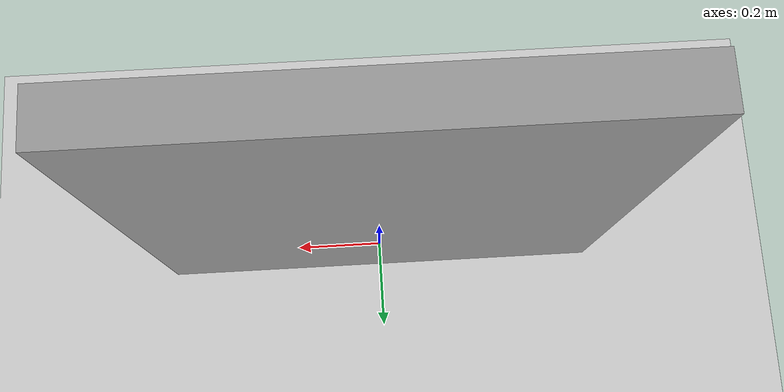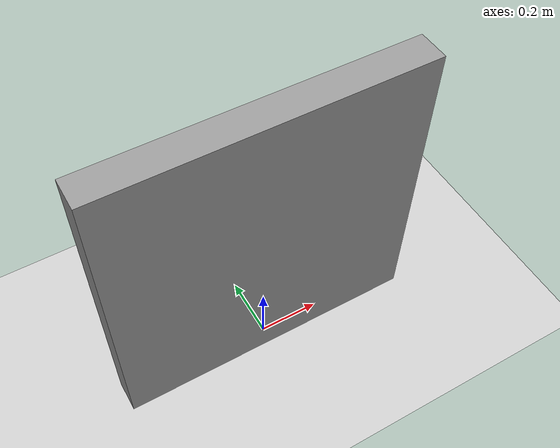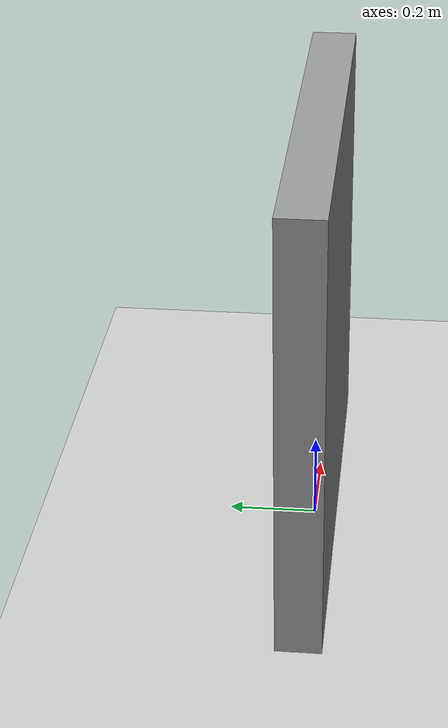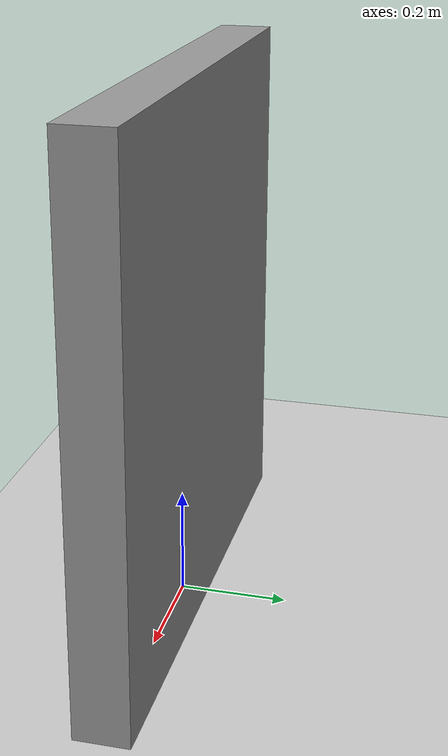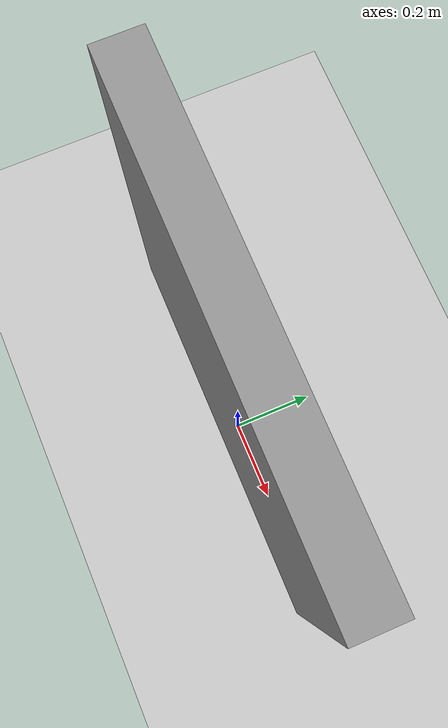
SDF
<?xml version="1.0" ?>
<sdf version="1.6">
    <world name="default">
        <gravity>0 0 -9.81</gravity>

        <include>
            <uri>model://Ground_plane</uri>
        </include>
        <include>
            <uri>model://sun</uri>
        </include>
        <model name='unit_box'>
            <pose frame=''>0 0 0.5 0 -0 0</pose>
            <link name='link'>
                <inertial>
                    <mass>1</mass>
                    <inertia>
                        <ixx>0.166667</ixx>
                        <ixy>0</ixy>
                        <ixz>0</ixz>
                        <iyy>0.166667</iyy>
                        <iyz>0</iyz>
                        <izz>0.166667</izz>
                    </inertia>
                </inertial>
                <collision name='collision'>
                    <geometry>
                        <box>
                            <size>1 0.1 1</size>
                        </box>
                    </geometry>
                </collision>
                <visual name='visual'>
                    <geometry>
                        <box>
                            <size>1 0.1 1</size>
                        </box>
                    </geometry>
                    <material>
                        <script>
                            <name>Gazebo/Grey</name>
                            <uri>file://media/materials/scripts/gazebo.material</uri>
                        </script>
                    </material>
                </visual>
                <self_collide>0</self_collide>
                <enable_wind>0</enable_wind>
            </link>
            <static>1</static>
        </model>
    </world>
</sdf>
